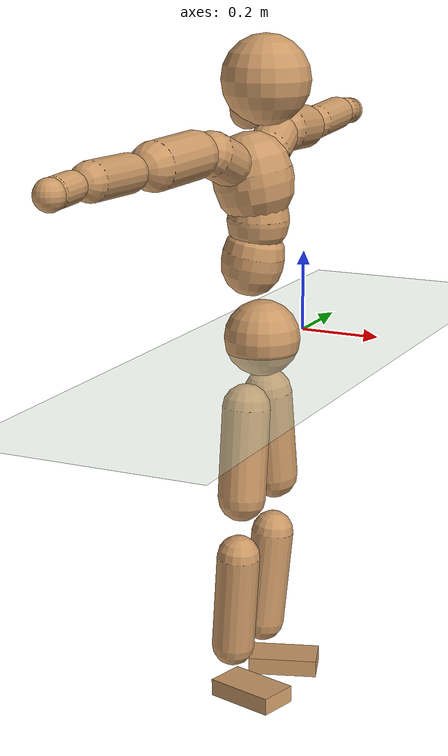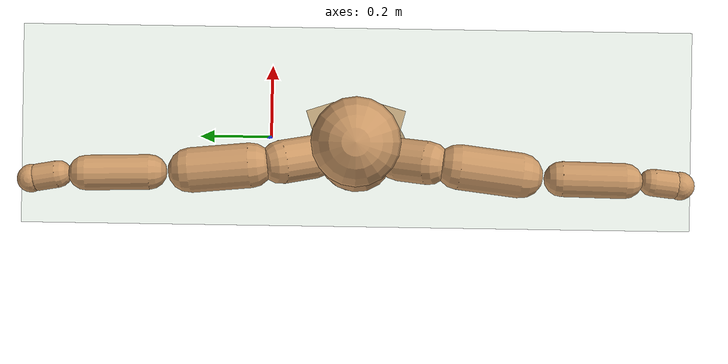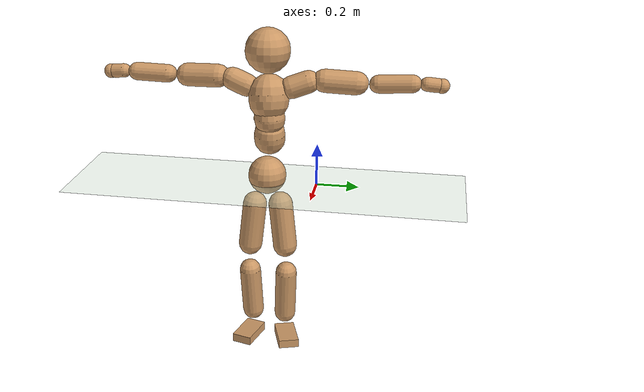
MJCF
<mujoco model="humanoid">
  <compiler coordinate="local"/>
  <default>
    <joint damping="0.0" armature="0.01" stiffness="0.0" limited="true"/>
    <geom conaffinity="1" condim="3" contype="7" margin="0.001" rgba="0.8 0.6 .4 1"/>
  </default>
  <asset>
    <texture type="skybox" builtin="gradient" rgb1=".4 .5 .6" rgb2="0 0 0" width="100" height="100"/>
    <texture builtin="flat" height="1278" mark="cross" markrgb="1 1 1" name="texgeom" random="0.01" rgb1="0.8 0.6 0.4" rgb2="0.8 0.6 0.4" type="cube" width="127"/>
    <texture builtin="checker" height="100" name="texplane" rgb1="0 0 0" rgb2="0.8 0.8 0.8" type="2d" width="100"/>
    <material name="MatPlane" reflectance="0.5" shininess="1" specular="1" texrepeat="60 60" texture="texplane"/>
    <material name="geom" texture="texgeom" texuniform="true"/>
  </asset>
  <worldbody>
    <light cutoff="100" diffuse="1 1 1" dir="-0 0 -1.3" directional="true" exponent="1" pos="0 0 1.3" specular=".1 .1 .1"/>
    <geom conaffinity="1" condim="3" name="floor" pos="0 0 0" rgba="0.8 0.9 0.8 1" size="100 100 .2" type="plane" material="MatPlane"/>
    <body name="Pelvis" pos="-0.0034 -0.2405 0.0316">
      <freejoint name="Pelvis"/>
      <geom type="sphere" contype="1" conaffinity="1" density="500" size="0.0919" pos="0.0000 0.0000 0.0000" name="Pelvis"/>
      <body name="L_Hip" pos="-0.0145 0.0549 -0.0784">
        <joint name="L_Hip_x" type="hinge" pos="0 0 0" axis="1 0 0" stiffness="800" damping="80" armature="0.02" range="-180.0000 180.0000"/>
        <joint name="L_Hip_y" type="hinge" pos="0 0 0" axis="0 1 0" stiffness="800" damping="80" armature="0.02" range="-180.0000 180.0000"/>
        <joint name="L_Hip_z" type="hinge" pos="0 0 0" axis="0 0 1" stiffness="800" damping="80" armature="0.02" range="-180.0000 180.0000"/>
        <geom type="capsule" contype="1" conaffinity="1" density="500" fromto="0.0021 0.0083 -0.0733 0.0086 0.0331 -0.2930" size="0.0589" name="L_Hip"/>
        <body name="L_Knee" pos="0.0107 0.0414 -0.3663">
          <joint name="L_Knee_x" type="hinge" pos="0 0 0" axis="1 0 0" stiffness="800" damping="80" armature="0.02" range="-180.0000 180.0000"/>
          <joint name="L_Knee_y" type="hinge" pos="0 0 0" axis="0 1 0" stiffness="800" damping="80" armature="0.02" range="-180.0000 180.0000"/>
          <joint name="L_Knee_z" type="hinge" pos="0 0 0" axis="0 0 1" stiffness="800" damping="80" armature="0.02" range="-180.0000 180.0000"/>
          <geom type="capsule" contype="1" conaffinity="1" density="500" fromto="-0.0070 -0.0027 -0.0806 -0.0280 -0.0110 -0.3226" size="0.0526" name="L_Knee"/>
          <body name="L_Ankle" pos="-0.035 -0.0137 -0.4032">
            <joint name="L_Ankle_x" type="hinge" pos="0 0 0" axis="1 0 0" stiffness="800" damping="80" armature="0.02" range="-180.0000 180.0000"/>
            <joint name="L_Ankle_y" type="hinge" pos="0 0 0" axis="0 1 0" stiffness="800" damping="80" armature="0.02" range="-180.0000 180.0000"/>
            <joint name="L_Ankle_z" type="hinge" pos="0 0 0" axis="0 0 1" stiffness="800" damping="80" armature="0.02" range="-180.0000 180.0000"/>
            <geom type="box" contype="1" conaffinity="1" density="500" pos="0.0588 0.0194 -0.0287" size="0.0857 0.0498 0.0208" quat="0.9874 0.0000 0.0000 0.1585" name="L_Ankle"/>
            <body name="L_Toe" pos="0.1175 0.0387 -0.0573">
              <joint name="L_Toe_x" type="hinge" pos="0 0 0" axis="1 0 0" stiffness="500" damping="50" armature="0.02" range="-180.0000 180.0000"/>
              <joint name="L_Toe_y" type="hinge" pos="0 0 0" axis="0 1 0" stiffness="500" damping="50" armature="0.02" range="-180.0000 180.0000"/>
              <joint name="L_Toe_z" type="hinge" pos="0 0 0" axis="0 0 1" stiffness="500" damping="50" armature="0.02" range="-180.0000 180.0000"/>
              <geom type="box" contype="1" conaffinity="1" density="500" pos="0.0000 0.0000 0.0282" size="0.001 0.0024 0.001" quat="0.9865 0.0000 0.0000 0.1635" name="L_Toe"/>
            </body>
          </body>
        </body>
      </body>
      <body name="R_Hip" pos="-0.0107 -0.0564 -0.0862">
        <joint name="R_Hip_x" type="hinge" pos="0 0 0" axis="1 0 0" stiffness="800" damping="80" armature="0.02" range="-180.0000 180.0000"/>
        <joint name="R_Hip_y" type="hinge" pos="0 0 0" axis="0 1 0" stiffness="800" damping="80" armature="0.02" range="-180.0000 180.0000"/>
        <joint name="R_Hip_z" type="hinge" pos="0 0 0" axis="0 0 1" stiffness="800" damping="80" armature="0.02" range="-180.0000 180.0000"/>
        <geom type="capsule" contype="1" conaffinity="1" density="500" fromto="-0.0003 -0.0080 -0.0729 -0.0010 -0.0319 -0.2914" size="0.0583" name="R_Hip"/>
        <body name="R_Knee" pos="-0.0013 -0.0398 -0.3643">
          <joint name="R_Knee_x" type="hinge" pos="0 0 0" axis="1 0 0" stiffness="800" damping="80" armature="0.02" range="-180.0000 180.0000"/>
          <joint name="R_Knee_y" type="hinge" pos="0 0 0" axis="0 1 0" stiffness="800" damping="80" armature="0.02" range="-180.0000 180.0000"/>
          <joint name="R_Knee_z" type="hinge" pos="0 0 0" axis="0 0 1" stiffness="800" damping="80" armature="0.02" range="-180.0000 180.0000"/>
          <geom type="capsule" contype="1" conaffinity="1" density="500" fromto="-0.0063 0.0036 -0.0794 -0.0253 0.0143 -0.3175" size="0.0528" name="R_Knee"/>
          <body name="R_Ankle" pos="-0.0316 0.0179 -0.3969">
            <joint name="R_Ankle_x" type="hinge" pos="0 0 0" axis="1 0 0" stiffness="800" damping="80" armature="0.02" range="-180.0000 180.0000"/>
            <joint name="R_Ankle_y" type="hinge" pos="0 0 0" axis="0 1 0" stiffness="800" damping="80" armature="0.02" range="-180.0000 180.0000"/>
            <joint name="R_Ankle_z" type="hinge" pos="0 0 0" axis="0 0 1" stiffness="800" damping="80" armature="0.02" range="-180.0000 180.0000"/>
            <geom type="box" contype="1" conaffinity="1" density="500" pos="0.0620 -0.0168 -0.0300" size="0.0865 0.0492 0.021" quat="0.9913 0.0000 0.0000 -0.1315" name="R_Ankle"/>
            <body name="R_Toe" pos="0.1241 -0.0335 -0.06">
              <joint name="R_Toe_x" type="hinge" pos="0 0 0" axis="1 0 0" stiffness="500" damping="50" armature="0.02" range="-180.0000 180.0000"/>
              <joint name="R_Toe_y" type="hinge" pos="0 0 0" axis="0 1 0" stiffness="500" damping="50" armature="0.02" range="-180.0000 180.0000"/>
              <joint name="R_Toe_z" type="hinge" pos="0 0 0" axis="0 0 1" stiffness="500" damping="50" armature="0.02" range="-180.0000 180.0000"/>
              <geom type="box" contype="1" conaffinity="1" density="500" pos="0.0000 0.0000 0.0301" size="0.001 0.0025 0.0011" quat="0.9925 0.0000 0.0000 -0.1222" name="R_Toe"/>
            </body>
          </body>
        </body>
      </body>
      <body name="Torso" pos="-0.0398 0.0042 0.1191">
        <joint name="Torso_x" type="hinge" pos="0 0 0" axis="1 0 0" stiffness="1000" damping="100" armature="0.02" range="-180.0000 180.0000"/>
        <joint name="Torso_y" type="hinge" pos="0 0 0" axis="0 1 0" stiffness="1000" damping="100" armature="0.02" range="-180.0000 180.0000"/>
        <joint name="Torso_z" type="hinge" pos="0 0 0" axis="0 0 1" stiffness="1000" damping="100" armature="0.02" range="-180.0000 180.0000"/>
        <geom type="capsule" contype="1" conaffinity="1" density="500" fromto="0.0142 0.0030 0.0814 0.0095 0.0020 0.0543" size="0.074493" name="Torso"/>
        <body name="Spine" pos="0.0237 0.0049 0.1356">
          <joint name="Spine_x" type="hinge" pos="0 0 0" axis="1 0 0" stiffness="1000" damping="100" armature="0.02" range="-180.0000 180.0000"/>
          <joint name="Spine_y" type="hinge" pos="0 0 0" axis="0 1 0" stiffness="1000" damping="100" armature="0.02" range="-180.0000 180.0000"/>
          <joint name="Spine_z" type="hinge" pos="0 0 0" axis="0 0 1" stiffness="1000" damping="100" armature="0.02" range="-180.0000 180.0000"/>
          <geom type="capsule" contype="1" conaffinity="1" density="500" fromto="0.0013 -0.0009 0.0329 0.0008 -0.0006 0.0219" size="0.074307" name="Spine"/>
          <body name="Chest" pos="0.0021 -0.0014 0.0549">
            <joint name="Chest_x" type="hinge" pos="0 0 0" axis="1 0 0" stiffness="1000" damping="100" armature="0.02" range="-180.0000 180.0000"/>
            <joint name="Chest_y" type="hinge" pos="0 0 0" axis="0 1 0" stiffness="1000" damping="100" armature="0.02" range="-180.0000 180.0000"/>
            <joint name="Chest_z" type="hinge" pos="0 0 0" axis="0 0 1" stiffness="1000" damping="100" armature="0.02" range="-180.0000 180.0000"/>
            <geom type="capsule" contype="1" conaffinity="1" density="500" fromto="-0.0152 -0.0053 0.0863 -0.0101 -0.0035 0.0575" size="0.096255" name="Chest"/>
            <body name="Neck" pos="-0.0332 -0.0141 0.21">
              <joint name="Neck_x" type="hinge" pos="0 0 0" axis="1 0 0" stiffness="500" damping="50" armature="0.02" range="-180.0000 180.0000"/>
              <joint name="Neck_y" type="hinge" pos="0 0 0" axis="0 1 0" stiffness="500" damping="50" armature="0.02" range="-180.0000 180.0000"/>
              <joint name="Neck_z" type="hinge" pos="0 0 0" axis="0 0 1" stiffness="500" damping="50" armature="0.02" range="-180.0000 180.0000"/>
              <geom type="capsule" contype="1" conaffinity="1" density="500" fromto="0.0104 0.0022 0.0182 0.0415 0.0087 0.0727" size="0.042966" name="Neck"/>
              <body name="Head" pos="0.0519 0.0109 0.0909">
                <joint name="Head_x" type="hinge" pos="0 0 0" axis="1 0 0" stiffness="500" damping="50" armature="0.02" range="-180.0000 180.0000"/>
                <joint name="Head_y" type="hinge" pos="0 0 0" axis="0 1 0" stiffness="500" damping="50" armature="0.02" range="-180.0000 180.0000"/>
                <joint name="Head_z" type="hinge" pos="0 0 0" axis="0 0 1" stiffness="500" damping="50" armature="0.02" range="-180.0000 180.0000"/>
                <geom type="sphere" contype="1" conaffinity="1" density="500" size="0.1060" pos="0.0000 0.0000 0.0000" name="Head"/>
              </body>
            </body>
            <body name="L_Thorax" pos="-0.0186 0.0748 0.1115">
              <joint name="L_Thorax_x" type="hinge" pos="0 0 0" axis="1 0 0" stiffness="500" damping="50" armature="0.02" range="-180.0000 180.0000"/>
              <joint name="L_Thorax_y" type="hinge" pos="0 0 0" axis="0 1 0" stiffness="500" damping="50" armature="0.02" range="-180.0000 180.0000"/>
              <joint name="L_Thorax_z" type="hinge" pos="0 0 0" axis="0 0 1" stiffness="500" damping="50" armature="0.02" range="-180.0000 180.0000"/>
              <geom type="capsule" contype="1" conaffinity="1" density="500" fromto="-0.0044 0.0258 0.0091 -0.0174 0.1032 0.0366" size="0.054" name="L_Thorax"/>
              <body name="L_Shoulder" pos="-0.0218 0.129 0.0457">
                <joint name="L_Shoulder_x" type="hinge" pos="0 0 0" axis="1 0 0" stiffness="500" damping="50" armature="0.02" range="-720.0000 720.0000"/>
                <joint name="L_Shoulder_y" type="hinge" pos="0 0 0" axis="0 1 0" stiffness="500" damping="50" armature="0.02" range="-720.0000 720.0000"/>
                <joint name="L_Shoulder_z" type="hinge" pos="0 0 0" axis="0 0 1" stiffness="500" damping="50" armature="0.02" range="-720.0000 720.0000"/>
                <geom type="capsule" contype="1" conaffinity="1" density="500" fromto="-0.0048 0.0491 -0.0029 -0.0191 0.1966 -0.0116" size="0.0557" name="L_Shoulder"/>
                <body name="L_Elbow" pos="-0.0239 0.2457 -0.0145">
                  <joint name="L_Elbow_x" type="hinge" pos="0 0 0" axis="1 0 0" stiffness="500" damping="50" armature="0.02" range="-720.0000 720.0000"/>
                  <joint name="L_Elbow_y" type="hinge" pos="0 0 0" axis="0 1 0" stiffness="500" damping="50" armature="0.02" range="-720.0000 720.0000"/>
                  <joint name="L_Elbow_z" type="hinge" pos="0 0 0" axis="0 0 1" stiffness="500" damping="50" armature="0.02" range="-720.0000 720.0000"/>
                  <geom type="capsule" contype="1" conaffinity="1" density="500" fromto="-0.0012 0.0513 0.0026 -0.0050 0.2050 0.0104" size="0.0431" name="L_Elbow"/>
                  <body name="L_Wrist" pos="-0.0062 0.2563 0.013">
                    <joint name="L_Wrist_x" type="hinge" pos="0 0 0" axis="1 0 0" stiffness="300" damping="30" armature="0.02" range="-180.0000 180.0000"/>
                    <joint name="L_Wrist_y" type="hinge" pos="0 0 0" axis="0 1 0" stiffness="300" damping="30" armature="0.02" range="-180.0000 180.0000"/>
                    <joint name="L_Wrist_z" type="hinge" pos="0 0 0" axis="0 0 1" stiffness="300" damping="30" armature="0.02" range="-180.0000 180.0000"/>
                    <geom type="capsule" contype="1" conaffinity="1" density="500" fromto="-0.0030 0.0169 -0.0021 -0.0119 0.0674 -0.0084" size="0.0334" name="L_Wrist"/>
                    <body name="L_Hand" pos="-0.0148 0.0843 -0.0105">
                      <joint name="L_Hand_x" type="hinge" pos="0 0 0" axis="1 0 0" stiffness="300" damping="30" armature="0.02" range="-180.0000 180.0000"/>
                      <joint name="L_Hand_y" type="hinge" pos="0 0 0" axis="0 1 0" stiffness="300" damping="30" armature="0.02" range="-180.0000 180.0000"/>
                      <joint name="L_Hand_z" type="hinge" pos="0 0 0" axis="0 0 1" stiffness="300" damping="30" armature="0.02" range="-180.0000 180.0000"/>
                      <geom type="sphere" contype="1" conaffinity="1" density="500" size="0.0347" pos="0.0000 0.0000 0.0000" name="L_Hand"/>
                    </body>
                  </body>
                </body>
              </body>
            </body>
            <body name="R_Thorax" pos="-0.0243 -0.0872 0.1099">
              <joint name="R_Thorax_x" type="hinge" pos="0 0 0" axis="1 0 0" stiffness="500" damping="50" armature="0.02" range="-180.0000 180.0000"/>
              <joint name="R_Thorax_y" type="hinge" pos="0 0 0" axis="0 1 0" stiffness="500" damping="50" armature="0.02" range="-180.0000 180.0000"/>
              <joint name="R_Thorax_z" type="hinge" pos="0 0 0" axis="0 0 1" stiffness="500" damping="50" armature="0.02" range="-180.0000 180.0000"/>
              <geom type="capsule" contype="1" conaffinity="1" density="500" fromto="-0.0022 -0.0235 0.0094 -0.0089 -0.0942 0.0378" size="0.0537" name="R_Thorax"/>
              <body name="R_Shoulder" pos="-0.0111 -0.1177 0.0472">
                <joint name="R_Shoulder_x" type="hinge" pos="0 0 0" axis="1 0 0" stiffness="500" damping="50" armature="0.02" range="-720.0000 720.0000"/>
                <joint name="R_Shoulder_y" type="hinge" pos="0 0 0" axis="0 1 0" stiffness="500" damping="50" armature="0.02" range="-720.0000 720.0000"/>
                <joint name="R_Shoulder_z" type="hinge" pos="0 0 0" axis="0 0 1" stiffness="500" damping="50" armature="0.02" range="-720.0000 720.0000"/>
                <geom type="capsule" contype="1" conaffinity="1" density="500" fromto="-0.0063 -0.0503 -0.0023 -0.0250 -0.2011 -0.0091" size="0.0561" name="R_Shoulder"/>
                <body name="R_Elbow" pos="-0.0313 -0.2513 -0.0113">
                  <joint name="R_Elbow_x" type="hinge" pos="0 0 0" axis="1 0 0" stiffness="500" damping="50" armature="0.02" range="-720.0000 720.0000"/>
                  <joint name="R_Elbow_y" type="hinge" pos="0 0 0" axis="0 1 0" stiffness="500" damping="50" armature="0.02" range="-720.0000 720.0000"/>
                  <joint name="R_Elbow_z" type="hinge" pos="0 0 0" axis="0 0 1" stiffness="500" damping="50" armature="0.02" range="-720.0000 720.0000"/>
                  <geom type="capsule" contype="1" conaffinity="1" density="500" fromto="-0.0008 -0.0514 0.0010 -0.0032 -0.2055 0.0042" size="0.0435" name="R_Elbow"/>
                  <body name="R_Wrist" pos="-0.004 -0.2569 0.0052">
                    <joint name="R_Wrist_x" type="hinge" pos="0 0 0" axis="1 0 0" stiffness="300" damping="30" armature="0.02" range="-180.0000 180.0000"/>
                    <joint name="R_Wrist_y" type="hinge" pos="0 0 0" axis="0 1 0" stiffness="300" damping="30" armature="0.02" range="-180.0000 180.0000"/>
                    <joint name="R_Wrist_z" type="hinge" pos="0 0 0" axis="0 0 1" stiffness="300" damping="30" armature="0.02" range="-180.0000 180.0000"/>
                    <geom type="capsule" contype="1" conaffinity="1" density="500" fromto="-0.0019 -0.0171 -0.0017 -0.0078 -0.0685 -0.0067" size="0.0338" name="R_Wrist"/>
                    <body name="R_Hand" pos="-0.0097 -0.0856 -0.0084">
                      <joint name="R_Hand_x" type="hinge" pos="0 0 0" axis="1 0 0" stiffness="300" damping="30" armature="0.02" range="-180.0000 180.0000"/>
                      <joint name="R_Hand_y" type="hinge" pos="0 0 0" axis="0 1 0" stiffness="300" damping="30" armature="0.02" range="-180.0000 180.0000"/>
                      <joint name="R_Hand_z" type="hinge" pos="0 0 0" axis="0 0 1" stiffness="300" damping="30" armature="0.02" range="-180.0000 180.0000"/>
                      <geom type="sphere" contype="1" conaffinity="1" density="500" size="0.0349" pos="0.0000 0.0000 0.0000" name="R_Hand"/>
                    </body>
                  </body>
                </body>
              </body>
            </body>
          </body>
        </body>
      </body>
    </body>
  </worldbody>
  <actuator>
    <motor name="L_Hip_x" joint="L_Hip_x" gear="500"/>
    <motor name="L_Hip_y" joint="L_Hip_y" gear="500"/>
    <motor name="L_Hip_z" joint="L_Hip_z" gear="500"/>
    <motor name="L_Knee_x" joint="L_Knee_x" gear="500"/>
    <motor name="L_Knee_y" joint="L_Knee_y" gear="500"/>
    <motor name="L_Knee_z" joint="L_Knee_z" gear="500"/>
    <motor name="L_Ankle_x" joint="L_Ankle_x" gear="500"/>
    <motor name="L_Ankle_y" joint="L_Ankle_y" gear="500"/>
    <motor name="L_Ankle_z" joint="L_Ankle_z" gear="500"/>
    <motor name="L_Toe_x" joint="L_Toe_x" gear="500"/>
    <motor name="L_Toe_y" joint="L_Toe_y" gear="500"/>
    <motor name="L_Toe_z" joint="L_Toe_z" gear="500"/>
    <motor name="R_Hip_x" joint="R_Hip_x" gear="500"/>
    <motor name="R_Hip_y" joint="R_Hip_y" gear="500"/>
    <motor name="R_Hip_z" joint="R_Hip_z" gear="500"/>
    <motor name="R_Knee_x" joint="R_Knee_x" gear="500"/>
    <motor name="R_Knee_y" joint="R_Knee_y" gear="500"/>
    <motor name="R_Knee_z" joint="R_Knee_z" gear="500"/>
    <motor name="R_Ankle_x" joint="R_Ankle_x" gear="500"/>
    <motor name="R_Ankle_y" joint="R_Ankle_y" gear="500"/>
    <motor name="R_Ankle_z" joint="R_Ankle_z" gear="500"/>
    <motor name="R_Toe_x" joint="R_Toe_x" gear="500"/>
    <motor name="R_Toe_y" joint="R_Toe_y" gear="500"/>
    <motor name="R_Toe_z" joint="R_Toe_z" gear="500"/>
    <motor name="Torso_x" joint="Torso_x" gear="500"/>
    <motor name="Torso_y" joint="Torso_y" gear="500"/>
    <motor name="Torso_z" joint="Torso_z" gear="500"/>
    <motor name="Spine_x" joint="Spine_x" gear="500"/>
    <motor name="Spine_y" joint="Spine_y" gear="500"/>
    <motor name="Spine_z" joint="Spine_z" gear="500"/>
    <motor name="Chest_x" joint="Chest_x" gear="500"/>
    <motor name="Chest_y" joint="Chest_y" gear="500"/>
    <motor name="Chest_z" joint="Chest_z" gear="500"/>
    <motor name="Neck_x" joint="Neck_x" gear="500"/>
    <motor name="Neck_y" joint="Neck_y" gear="500"/>
    <motor name="Neck_z" joint="Neck_z" gear="500"/>
    <motor name="Head_x" joint="Head_x" gear="500"/>
    <motor name="Head_y" joint="Head_y" gear="500"/>
    <motor name="Head_z" joint="Head_z" gear="500"/>
    <motor name="L_Thorax_x" joint="L_Thorax_x" gear="500"/>
    <motor name="L_Thorax_y" joint="L_Thorax_y" gear="500"/>
    <motor name="L_Thorax_z" joint="L_Thorax_z" gear="500"/>
    <motor name="L_Shoulder_x" joint="L_Shoulder_x" gear="500"/>
    <motor name="L_Shoulder_y" joint="L_Shoulder_y" gear="500"/>
    <motor name="L_Shoulder_z" joint="L_Shoulder_z" gear="500"/>
    <motor name="L_Elbow_x" joint="L_Elbow_x" gear="500"/>
    <motor name="L_Elbow_y" joint="L_Elbow_y" gear="500"/>
    <motor name="L_Elbow_z" joint="L_Elbow_z" gear="500"/>
    <motor name="L_Wrist_x" joint="L_Wrist_x" gear="500"/>
    <motor name="L_Wrist_y" joint="L_Wrist_y" gear="500"/>
    <motor name="L_Wrist_z" joint="L_Wrist_z" gear="500"/>
    <motor name="L_Hand_x" joint="L_Hand_x" gear="500"/>
    <motor name="L_Hand_y" joint="L_Hand_y" gear="500"/>
    <motor name="L_Hand_z" joint="L_Hand_z" gear="500"/>
    <motor name="R_Thorax_x" joint="R_Thorax_x" gear="500"/>
    <motor name="R_Thorax_y" joint="R_Thorax_y" gear="500"/>
    <motor name="R_Thorax_z" joint="R_Thorax_z" gear="500"/>
    <motor name="R_Shoulder_x" joint="R_Shoulder_x" gear="500"/>
    <motor name="R_Shoulder_y" joint="R_Shoulder_y" gear="500"/>
    <motor name="R_Shoulder_z" joint="R_Shoulder_z" gear="500"/>
    <motor name="R_Elbow_x" joint="R_Elbow_x" gear="500"/>
    <motor name="R_Elbow_y" joint="R_Elbow_y" gear="500"/>
    <motor name="R_Elbow_z" joint="R_Elbow_z" gear="500"/>
    <motor name="R_Wrist_x" joint="R_Wrist_x" gear="500"/>
    <motor name="R_Wrist_y" joint="R_Wrist_y" gear="500"/>
    <motor name="R_Wrist_z" joint="R_Wrist_z" gear="500"/>
    <motor name="R_Hand_x" joint="R_Hand_x" gear="500"/>
    <motor name="R_Hand_y" joint="R_Hand_y" gear="500"/>
    <motor name="R_Hand_z" joint="R_Hand_z" gear="500"/>
  </actuator>
  <contact>
    <exclude body1="Torso" body2="Chest"/>
    <exclude body1="Head" body2="Chest"/>
    <exclude body1="R_Knee" body2="R_Toe"/>
    <exclude body1="R_Knee" body2="L_Ankle"/>
    <exclude body1="R_Knee" body2="L_Toe"/>
    <exclude body1="L_Knee" body2="L_Toe"/>
    <exclude body1="L_Knee" body2="R_Ankle"/>
    <exclude body1="L_Knee" body2="R_Toe"/>
    <exclude body1="L_Shoulder" body2="Chest"/>
    <exclude body1="R_Shoulder" body2="Chest"/>
  </contact>
  <sensor/>
  <size njmax="700" nconmax="700"/>
</mujoco>
